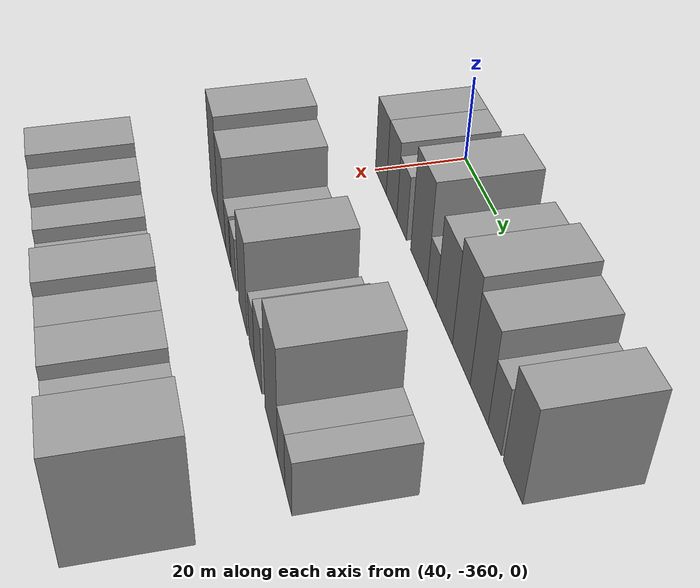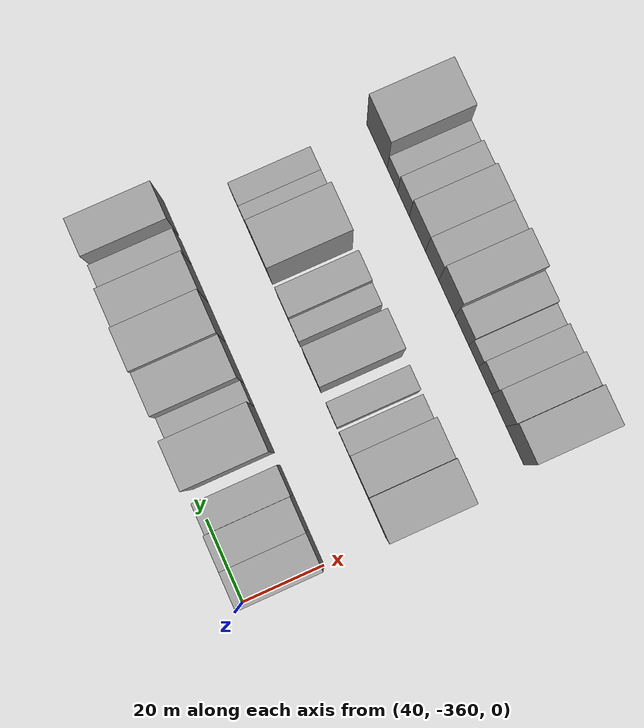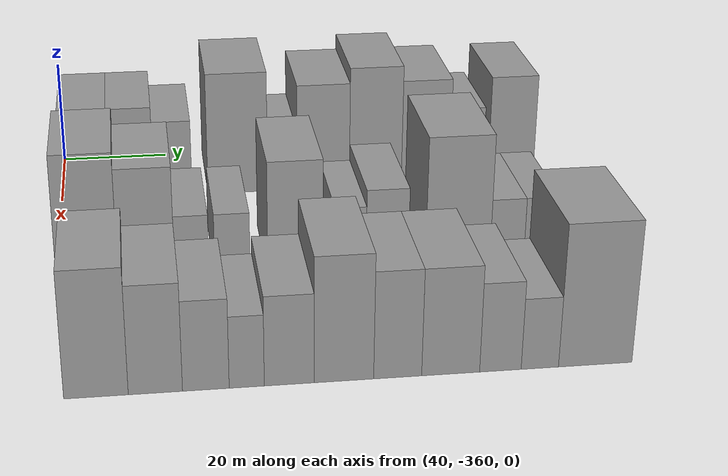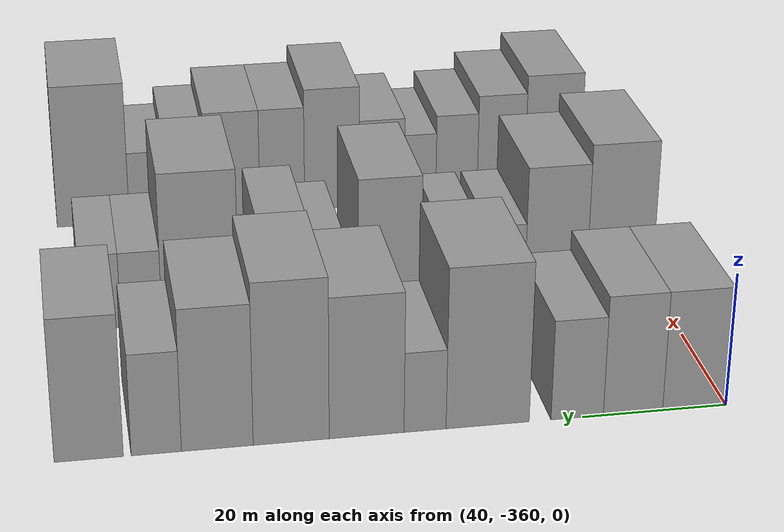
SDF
<sdf version="1.6">
 <world name="default">
  <model name="building_1">
   <static>1</static>
   <pose>50.0000 -355.5543 0 0.000000 0.000000 0.000000</pose>
   <link name="link">
    <pose>0 0 9.00 0 0 0</pose>
    <collision name="collision"><geometry><box><size>20.0000 8.8914 18.0000</size></box></geometry></collision>
    <visual name="visual">
     <cast_shadows>0</cast_shadows>
     <geometry><box><size>20.0000 8.8914 18.0000</size></box></geometry>
     <material>
      <script>
       <uri>model://grey_wall/materials/scripts</uri>
       <uri>model://grey_wall/materials/textures</uri>
       <name>vrc/grey_wall</name>
      </script>
     </material>
    </visual>
   </link>
  </model>
  <model name="building_2">
   <static>1</static>
   <pose>50.0000 -346.9691 0 0.000000 0.000000 0.000000</pose>
   <link name="link">
    <pose>0 0 9.00 0 0 0</pose>
    <collision name="collision"><geometry><box><size>20.0000 8.2791 18.0000</size></box></geometry></collision>
    <visual name="visual">
     <cast_shadows>0</cast_shadows>
     <geometry><box><size>20.0000 8.2791 18.0000</size></box></geometry>
     <material>
      <script>
       <uri>model://grey_wall/materials/scripts</uri>
       <uri>model://grey_wall/materials/textures</uri>
       <name>vrc/grey_wall</name>
      </script>
     </material>
    </visual>
   </link>
  </model>
  <model name="building_3">
   <static>1</static>
   <pose>50.0000 -339.2189 0 0.000000 0.000000 0.000000</pose>
   <link name="link">
    <pose>0 0 7.50 0 0 0</pose>
    <collision name="collision"><geometry><box><size>20.0000 7.2212 15.0000</size></box></geometry></collision>
    <visual name="visual">
     <cast_shadows>0</cast_shadows>
     <geometry><box><size>20.0000 7.2212 15.0000</size></box></geometry>
     <material>
      <script>
       <uri>model://grey_wall/materials/scripts</uri>
       <uri>model://grey_wall/materials/textures</uri>
       <name>vrc/grey_wall</name>
      </script>
     </material>
    </visual>
   </link>
  </model>
  <model name="building_4">
   <static>1</static>
   <pose>50.0000 -326.9329 0 0.000000 0.000000 0.000000</pose>
   <link name="link">
    <pose>0 0 12.00 0 0 0</pose>
    <collision name="collision"><geometry><box><size>20.0000 11.3509 24.0000</size></box></geometry></collision>
    <visual name="visual">
     <cast_shadows>0</cast_shadows>
     <geometry><box><size>20.0000 11.3509 24.0000</size></box></geometry>
     <material>
      <script>
       <uri>model://grey_wall/materials/scripts</uri>
       <uri>model://grey_wall/materials/textures</uri>
       <name>vrc/grey_wall</name>
      </script>
     </material>
    </visual>
   </link>
  </model>
  <model name="building_5">
   <static>1</static>
   <pose>50.0000 -318.4150 0 0.000000 0.000000 0.000000</pose>
   <link name="link">
    <pose>0 0 6.00 0 0 0</pose>
    <collision name="collision"><geometry><box><size>20.0000 5.6850 12.0000</size></box></geometry></collision>
    <visual name="visual">
     <cast_shadows>0</cast_shadows>
     <geometry><box><size>20.0000 5.6850 12.0000</size></box></geometry>
     <material>
      <script>
       <uri>model://grey_wall/materials/scripts</uri>
       <uri>model://grey_wall/materials/textures</uri>
       <name>vrc/grey_wall</name>
      </script>
     </material>
    </visual>
   </link>
  </model>
  <model name="building_6">
   <static>1</static>
   <pose>50.0000 -310.5477 0 0.000000 0.000000 0.000000</pose>
   <link name="link">
    <pose>0 0 10.50 0 0 0</pose>
    <collision name="collision"><geometry><box><size>20.0000 10.0495 21.0000</size></box></geometry></collision>
    <visual name="visual">
     <cast_shadows>0</cast_shadows>
     <geometry><box><size>20.0000 10.0495 21.0000</size></box></geometry>
     <material>
      <script>
       <uri>model://grey_wall/materials/scripts</uri>
       <uri>model://grey_wall/materials/textures</uri>
       <name>vrc/grey_wall</name>
      </script>
     </material>
    </visual>
   </link>
  </model>
  <model name="building_7">
   <static>1</static>
   <pose>50.0000 -300.4793 0 0.000000 0.000000 0.000000</pose>
   <link name="link">
    <pose>0 0 12.00 0 0 0</pose>
    <collision name="collision"><geometry><box><size>20.0000 10.0874 24.0000</size></box></geometry></collision>
    <visual name="visual">
     <cast_shadows>0</cast_shadows>
     <geometry><box><size>20.0000 10.0874 24.0000</size></box></geometry>
     <material>
      <script>
       <uri>model://grey_wall/materials/scripts</uri>
       <uri>model://grey_wall/materials/textures</uri>
       <name>vrc/grey_wall</name>
      </script>
     </material>
    </visual>
   </link>
  </model>
  <model name="building_8">
   <static>1</static>
   <pose>50.0000 -290.7188 0 0.000000 0.000000 0.000000</pose>
   <link name="link">
    <pose>0 0 10.50 0 0 0</pose>
    <collision name="collision"><geometry><box><size>20.0000 9.4337 21.0000</size></box></geometry></collision>
    <visual name="visual">
     <cast_shadows>0</cast_shadows>
     <geometry><box><size>20.0000 9.4337 21.0000</size></box></geometry>
     <material>
      <script>
       <uri>model://grey_wall/materials/scripts</uri>
       <uri>model://grey_wall/materials/textures</uri>
       <name>vrc/grey_wall</name>
      </script>
     </material>
    </visual>
   </link>
  </model>
  <model name="building_9">
   <static>1</static>
   <pose>50.0000 -282.7231 0 0.000000 0.000000 0.000000</pose>
   <link name="link">
    <pose>0 0 7.50 0 0 0</pose>
    <collision name="collision"><geometry><box><size>20.0000 6.5577 15.0000</size></box></geometry></collision>
    <visual name="visual">
     <cast_shadows>0</cast_shadows>
     <geometry><box><size>20.0000 6.5577 15.0000</size></box></geometry>
     <material>
      <script>
       <uri>model://grey_wall/materials/scripts</uri>
       <uri>model://grey_wall/materials/textures</uri>
       <name>vrc/grey_wall</name>
      </script>
     </material>
    </visual>
   </link>
  </model>
  <model name="building_10">
   <static>1</static>
   <pose>50.0000 -273.9683 0 0.000000 0.000000 0.000000</pose>
   <link name="link">
    <pose>0 0 10.50 0 0 0</pose>
    <collision name="collision"><geometry><box><size>20.0000 8.9520 21.0000</size></box></geometry></collision>
    <visual name="visual">
     <cast_shadows>0</cast_shadows>
     <geometry><box><size>20.0000 8.9520 21.0000</size></box></geometry>
     <material>
      <script>
       <uri>model://grey_wall/materials/scripts</uri>
       <uri>model://grey_wall/materials/textures</uri>
       <name>vrc/grey_wall</name>
      </script>
     </material>
    </visual>
   </link>
  </model>
  <model name="building_80">
   <static>1</static>
   <pose>85.0000 -354.8889 0 0.000000 0.000000 0.000000</pose>
   <link name="link">
    <pose>0 0 12.00 0 0 0</pose>
    <collision name="collision"><geometry><box><size>20.0000 10.2222 24.0000</size></box></geometry></collision>
    <visual name="visual">
     <cast_shadows>0</cast_shadows>
     <geometry><box><size>20.0000 10.2222 24.0000</size></box></geometry>
     <material>
      <script>
       <uri>model://grey_wall/materials/scripts</uri>
       <uri>model://grey_wall/materials/textures</uri>
       <name>vrc/grey_wall</name>
      </script>
     </material>
    </visual>
   </link>
  </model>
  <model name="building_81">
   <static>1</static>
   <pose>85.0000 -345.0413 0 0.000000 0.000000 0.000000</pose>
   <link name="link">
    <pose>0 0 10.50 0 0 0</pose>
    <collision name="collision"><geometry><box><size>20.0000 9.4729 21.0000</size></box></geometry></collision>
    <visual name="visual">
     <cast_shadows>0</cast_shadows>
     <geometry><box><size>20.0000 9.4729 21.0000</size></box></geometry>
     <material>
      <script>
       <uri>model://grey_wall/materials/scripts</uri>
       <uri>model://grey_wall/materials/textures</uri>
       <name>vrc/grey_wall</name>
      </script>
     </material>
    </visual>
   </link>
  </model>
  <model name="building_82">
   <static>1</static>
   <pose>85.0000 -337.4258 0 0.000000 0.000000 0.000000</pose>
   <link name="link">
    <pose>0 0 6.00 0 0 0</pose>
    <collision name="collision"><geometry><box><size>20.0000 5.7582 12.0000</size></box></geometry></collision>
    <visual name="visual">
     <cast_shadows>0</cast_shadows>
     <geometry><box><size>20.0000 5.7582 12.0000</size></box></geometry>
     <material>
      <script>
       <uri>model://grey_wall/materials/scripts</uri>
       <uri>model://grey_wall/materials/textures</uri>
       <name>vrc/grey_wall</name>
      </script>
     </material>
    </visual>
   </link>
  </model>
  <model name="building_83">
   <static>1</static>
   <pose>85.0000 -330.5669 0 0.000000 0.000000 0.000000</pose>
   <link name="link">
    <pose>0 0 6.00 0 0 0</pose>
    <collision name="collision"><geometry><box><size>20.0000 5.9597 12.0000</size></box></geometry></collision>
    <visual name="visual">
     <cast_shadows>0</cast_shadows>
     <geometry><box><size>20.0000 5.9597 12.0000</size></box></geometry>
     <material>
      <script>
       <uri>model://grey_wall/materials/scripts</uri>
       <uri>model://grey_wall/materials/textures</uri>
       <name>vrc/grey_wall</name>
      </script>
     </material>
    </visual>
   </link>
  </model>
  <model name="building_84">
   <static>1</static>
   <pose>85.0000 -319.8763 0 0.000000 0.000000 0.000000</pose>
   <link name="link">
    <pose>0 0 10.50 0 0 0</pose>
    <collision name="collision"><geometry><box><size>20.0000 9.4215 21.0000</size></box></geometry></collision>
    <visual name="visual">
     <cast_shadows>0</cast_shadows>
     <geometry><box><size>20.0000 9.4215 21.0000</size></box></geometry>
     <material>
      <script>
       <uri>model://grey_wall/materials/scripts</uri>
       <uri>model://grey_wall/materials/textures</uri>
       <name>vrc/grey_wall</name>
      </script>
     </material>
    </visual>
   </link>
  </model>
  <model name="building_85">
   <static>1</static>
   <pose>85.0000 -310.4702 0 0.000000 0.000000 0.000000</pose>
   <link name="link">
    <pose>0 0 6.00 0 0 0</pose>
    <collision name="collision"><geometry><box><size>20.0000 5.3906 12.0000</size></box></geometry></collision>
    <visual name="visual">
     <cast_shadows>0</cast_shadows>
     <geometry><box><size>20.0000 5.3906 12.0000</size></box></geometry>
     <material>
      <script>
       <uri>model://grey_wall/materials/scripts</uri>
       <uri>model://grey_wall/materials/textures</uri>
       <name>vrc/grey_wall</name>
      </script>
     </material>
    </visual>
   </link>
  </model>
  <model name="building_86">
   <static>1</static>
   <pose>85.0000 -304.1264 0 0.000000 0.000000 0.000000</pose>
   <link name="link">
    <pose>0 0 7.50 0 0 0</pose>
    <collision name="collision"><geometry><box><size>20.0000 7.2970 15.0000</size></box></geometry></collision>
    <visual name="visual">
     <cast_shadows>0</cast_shadows>
     <geometry><box><size>20.0000 7.2970 15.0000</size></box></geometry>
     <material>
      <script>
       <uri>model://grey_wall/materials/scripts</uri>
       <uri>model://grey_wall/materials/textures</uri>
       <name>vrc/grey_wall</name>
      </script>
     </material>
    </visual>
   </link>
  </model>
  <model name="building_87">
   <static>1</static>
   <pose>85.0000 -291.8405 0 0.000000 0.000000 0.000000</pose>
   <link name="link">
    <pose>0 0 12.00 0 0 0</pose>
    <collision name="collision"><geometry><box><size>20.0000 11.2748 24.0000</size></box></geometry></collision>
    <visual name="visual">
     <cast_shadows>0</cast_shadows>
     <geometry><box><size>20.0000 11.2748 24.0000</size></box></geometry>
     <material>
      <script>
       <uri>model://grey_wall/materials/scripts</uri>
       <uri>model://grey_wall/materials/textures</uri>
       <name>vrc/grey_wall</name>
      </script>
     </material>
    </visual>
   </link>
  </model>
  <model name="building_88">
   <static>1</static>
   <pose>85.0000 -283.2173 0 0.000000 0.000000 0.000000</pose>
   <link name="link">
    <pose>0 0 6.00 0 0 0</pose>
    <collision name="collision"><geometry><box><size>20.0000 5.9716 12.0000</size></box></geometry></collision>
    <visual name="visual">
     <cast_shadows>0</cast_shadows>
     <geometry><box><size>20.0000 5.9716 12.0000</size></box></geometry>
     <material>
      <script>
       <uri>model://grey_wall/materials/scripts</uri>
       <uri>model://grey_wall/materials/textures</uri>
       <name>vrc/grey_wall</name>
      </script>
     </material>
    </visual>
   </link>
  </model>
  <model name="building_89">
   <static>1</static>
   <pose>85.0000 -277.3785 0 0.000000 0.000000 0.000000</pose>
   <link name="link">
    <pose>0 0 6.00 0 0 0</pose>
    <collision name="collision"><geometry><box><size>20.0000 5.7058 12.0000</size></box></geometry></collision>
    <visual name="visual">
     <cast_shadows>0</cast_shadows>
     <geometry><box><size>20.0000 5.7058 12.0000</size></box></geometry>
     <material>
      <script>
       <uri>model://grey_wall/materials/scripts</uri>
       <uri>model://grey_wall/materials/textures</uri>
       <name>vrc/grey_wall</name>
      </script>
     </material>
    </visual>
   </link>
  </model>
  <model name="building_165">
   <static>1</static>
   <pose>120.0000 -353.2977 0 0.000000 0.000000 0.000000</pose>
   <link name="link">
    <pose>0 0 10.50 0 0 0</pose>
    <collision name="collision"><geometry><box><size>20.0000 9.4045 21.0000</size></box></geometry></collision>
    <visual name="visual">
     <cast_shadows>0</cast_shadows>
     <geometry><box><size>20.0000 9.4045 21.0000</size></box></geometry>
     <material>
      <script>
       <uri>model://grey_wall/materials/scripts</uri>
       <uri>model://grey_wall/materials/textures</uri>
       <name>vrc/grey_wall</name>
      </script>
     </material>
    </visual>
   </link>
  </model>
  <model name="building_166">
   <static>1</static>
   <pose>120.0000 -344.6159 0 0.000000 0.000000 0.000000</pose>
   <link name="link">
    <pose>0 0 9.00 0 0 0</pose>
    <collision name="collision"><geometry><box><size>20.0000 7.9591 18.0000</size></box></geometry></collision>
    <visual name="visual">
     <cast_shadows>0</cast_shadows>
     <geometry><box><size>20.0000 7.9591 18.0000</size></box></geometry>
     <material>
      <script>
       <uri>model://grey_wall/materials/scripts</uri>
       <uri>model://grey_wall/materials/textures</uri>
       <name>vrc/grey_wall</name>
      </script>
     </material>
    </visual>
   </link>
  </model>
  <model name="building_167">
   <static>1</static>
   <pose>120.0000 -337.1858 0 0.000000 0.000000 0.000000</pose>
   <link name="link">
    <pose>0 0 7.50 0 0 0</pose>
    <collision name="collision"><geometry><box><size>20.0000 6.9013 15.0000</size></box></geometry></collision>
    <visual name="visual">
     <cast_shadows>0</cast_shadows>
     <geometry><box><size>20.0000 6.9013 15.0000</size></box></geometry>
     <material>
      <script>
       <uri>model://grey_wall/materials/scripts</uri>
       <uri>model://grey_wall/materials/textures</uri>
       <name>vrc/grey_wall</name>
      </script>
     </material>
    </visual>
   </link>
  </model>
  <model name="building_168">
   <static>1</static>
   <pose>120.0000 -331.1263 0 0.000000 0.000000 0.000000</pose>
   <link name="link">
    <pose>0 0 6.00 0 0 0</pose>
    <collision name="collision"><geometry><box><size>20.0000 5.2177 12.0000</size></box></geometry></collision>
    <visual name="visual">
     <cast_shadows>0</cast_shadows>
     <geometry><box><size>20.0000 5.2177 12.0000</size></box></geometry>
     <material>
      <script>
       <uri>model://grey_wall/materials/scripts</uri>
       <uri>model://grey_wall/materials/textures</uri>
       <name>vrc/grey_wall</name>
      </script>
     </material>
    </visual>
   </link>
  </model>
  <model name="building_169">
   <static>1</static>
   <pose>120.0000 -324.7947 0 0.000000 0.000000 0.000000</pose>
   <link name="link">
    <pose>0 0 7.50 0 0 0</pose>
    <collision name="collision"><geometry><box><size>20.0000 7.4456 15.0000</size></box></geometry></collision>
    <visual name="visual">
     <cast_shadows>0</cast_shadows>
     <geometry><box><size>20.0000 7.4456 15.0000</size></box></geometry>
     <material>
      <script>
       <uri>model://grey_wall/materials/scripts</uri>
       <uri>model://grey_wall/materials/textures</uri>
       <name>vrc/grey_wall</name>
      </script>
     </material>
    </visual>
   </link>
  </model>
  <model name="building_170">
   <static>1</static>
   <pose>120.0000 -316.5774 0 0.000000 0.000000 0.000000</pose>
   <link name="link">
    <pose>0 0 10.50 0 0 0</pose>
    <collision name="collision"><geometry><box><size>20.0000 8.9890 21.0000</size></box></geometry></collision>
    <visual name="visual">
     <cast_shadows>0</cast_shadows>
     <geometry><box><size>20.0000 8.9890 21.0000</size></box></geometry>
     <material>
      <script>
       <uri>model://grey_wall/materials/scripts</uri>
       <uri>model://grey_wall/materials/textures</uri>
       <name>vrc/grey_wall</name>
      </script>
     </material>
    </visual>
   </link>
  </model>
  <model name="building_171">
   <static>1</static>
   <pose>120.0000 -308.4353 0 0.000000 0.000000 0.000000</pose>
   <link name="link">
    <pose>0 0 9.00 0 0 0</pose>
    <collision name="collision"><geometry><box><size>20.0000 7.2953 18.0000</size></box></geometry></collision>
    <visual name="visual">
     <cast_shadows>0</cast_shadows>
     <geometry><box><size>20.0000 7.2953 18.0000</size></box></geometry>
     <material>
      <script>
       <uri>model://grey_wall/materials/scripts</uri>
       <uri>model://grey_wall/materials/textures</uri>
       <name>vrc/grey_wall</name>
      </script>
     </material>
    </visual>
   </link>
  </model>
  <model name="building_172">
   <static>1</static>
   <pose>120.0000 -300.3467 0 0.000000 0.000000 0.000000</pose>
   <link name="link">
    <pose>0 0 9.00 0 0 0</pose>
    <collision name="collision"><geometry><box><size>20.0000 8.8818 18.0000</size></box></geometry></collision>
    <visual name="visual">
     <cast_shadows>0</cast_shadows>
     <geometry><box><size>20.0000 8.8818 18.0000</size></box></geometry>
     <material>
      <script>
       <uri>model://grey_wall/materials/scripts</uri>
       <uri>model://grey_wall/materials/textures</uri>
       <name>vrc/grey_wall</name>
      </script>
     </material>
    </visual>
   </link>
  </model>
  <model name="building_173">
   <static>1</static>
   <pose>120.0000 -292.7023 0 0.000000 0.000000 0.000000</pose>
   <link name="link">
    <pose>0 0 7.50 0 0 0</pose>
    <collision name="collision"><geometry><box><size>20.0000 6.4070 15.0000</size></box></geometry></collision>
    <visual name="visual">
     <cast_shadows>0</cast_shadows>
     <geometry><box><size>20.0000 6.4070 15.0000</size></box></geometry>
     <material>
      <script>
       <uri>model://grey_wall/materials/scripts</uri>
       <uri>model://grey_wall/materials/textures</uri>
       <name>vrc/grey_wall</name>
      </script>
     </material>
    </visual>
   </link>
  </model>
  <model name="building_174">
   <static>1</static>
   <pose>120.0000 -286.5997 0 0.000000 0.000000 0.000000</pose>
   <link name="link">
    <pose>0 0 6.00 0 0 0</pose>
    <collision name="collision"><geometry><box><size>20.0000 5.7983 12.0000</size></box></geometry></collision>
    <visual name="visual">
     <cast_shadows>0</cast_shadows>
     <geometry><box><size>20.0000 5.7983 12.0000</size></box></geometry>
     <material>
      <script>
       <uri>model://grey_wall/materials/scripts</uri>
       <uri>model://grey_wall/materials/textures</uri>
       <name>vrc/grey_wall</name>
      </script>
     </material>
    </visual>
   </link>
  </model>
  <model name="building_175">
   <static>1</static>
   <pose>120.0000 -277.9554 0 0.000000 0.000000 0.000000</pose>
   <link name="link">
    <pose>0 0 12.00 0 0 0</pose>
    <collision name="collision"><geometry><box><size>20.0000 11.4902 24.0000</size></box></geometry></collision>
    <visual name="visual">
     <cast_shadows>0</cast_shadows>
     <geometry><box><size>20.0000 11.4902 24.0000</size></box></geometry>
     <material>
      <script>
       <uri>model://grey_wall/materials/scripts</uri>
       <uri>model://grey_wall/materials/textures</uri>
       <name>vrc/grey_wall</name>
      </script>
     </material>
    </visual>
   </link>
  </model>
 </world>
</sdf>
